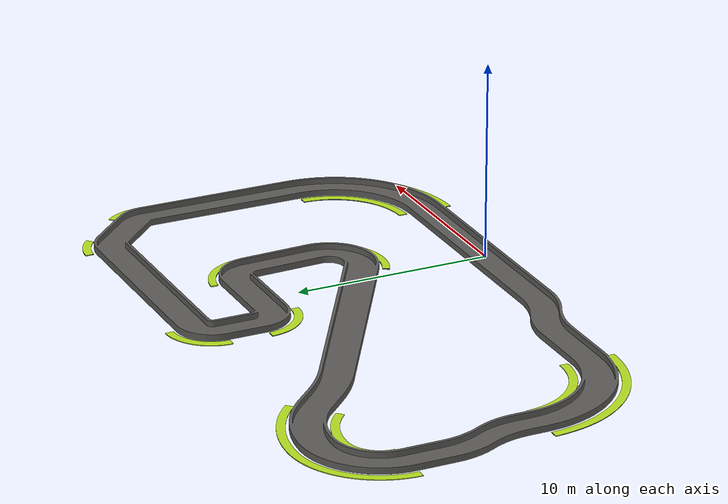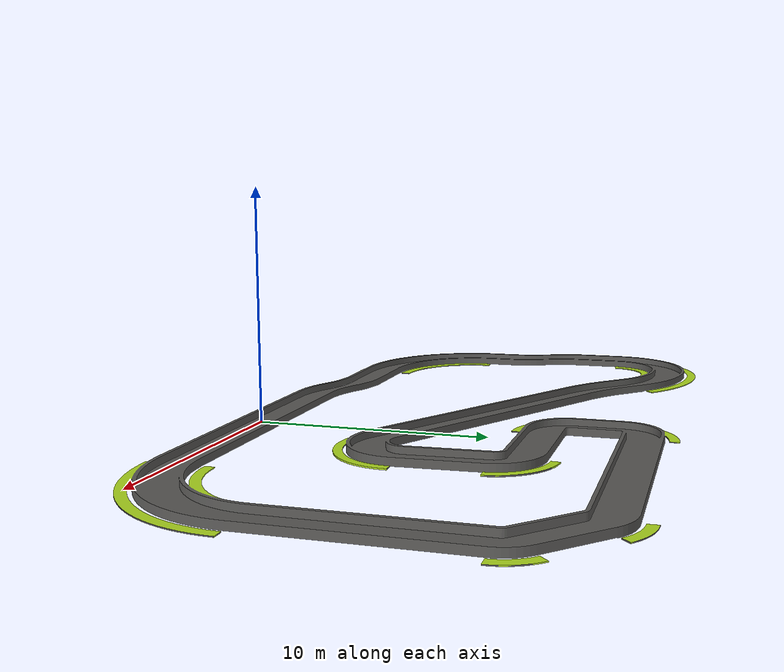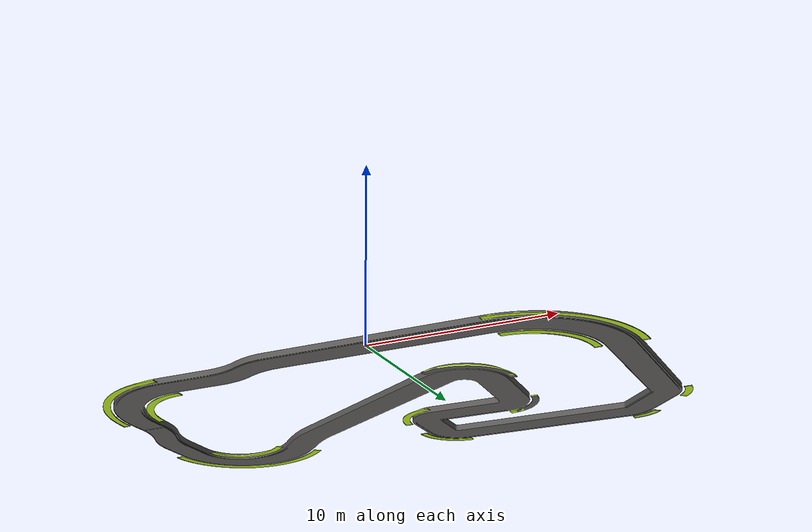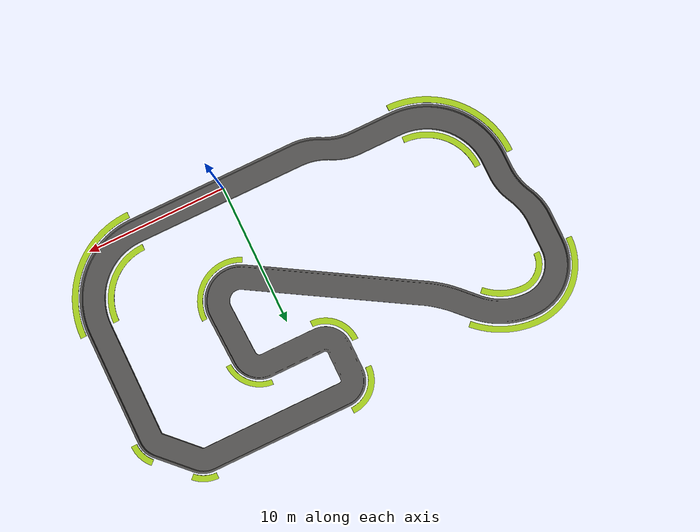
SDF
<?xml version='1.0'?>
<sdf version='1.6'>
  <model name="track">
    <static>true</static>
    <link name="link">
      <collision name="collision">
        <geometry>
          <mesh>
            <uri>model://turtlebot3_racemap/track/meshes/RaceTrackV1.dae</uri>
          </mesh>
        </geometry>
      </collision>
      <visual name="visual">
        <geometry>
          <mesh>
            <uri>model://turtlebot3_racemap/track/meshes/RaceTrackV1.dae</uri>
          </mesh>
        </geometry>
      </visual>
    </link>
  </model>
</sdf>
